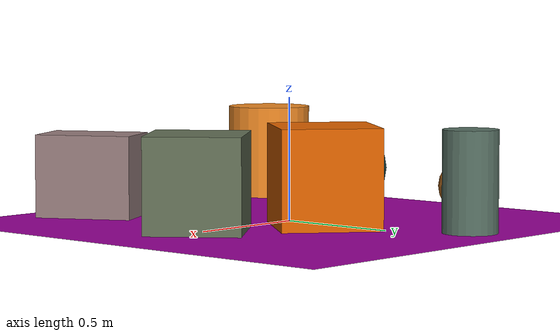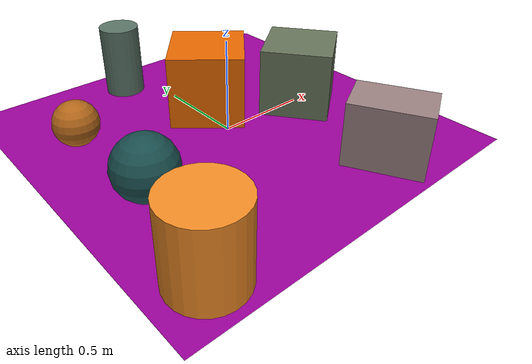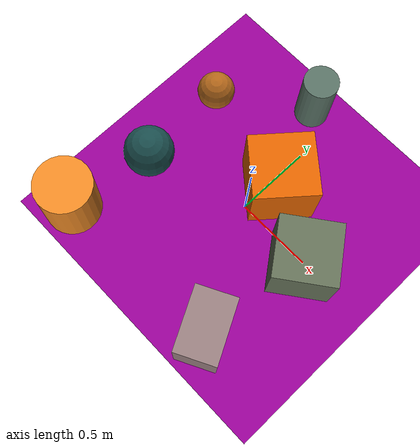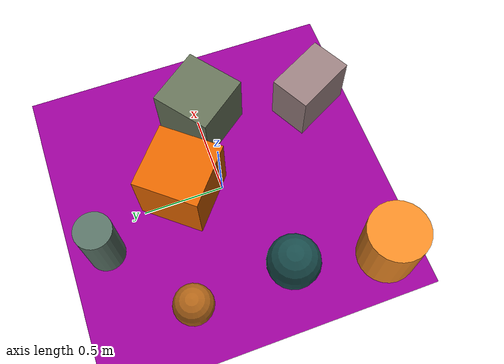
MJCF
<mujoco>
   <asset>
<texture type="skybox" builtin="gradient" rgb1="0.7 0.9 0.3" rgb2="0.1 0.1 0.5" width="256" height="256"/>
<texture name="gradient_0" builtin="gradient" rgb1="1.0 0.4 0.2" rgb2="0.9 0.7 0.1" width="200" height="200"/>
<texture name="flat_1" builtin="flat" rgb1="0.1 0.3 0.3" rgb2="0.1 0.3 0.3"  width="200" height="200"/>
<texture name="gradient_2" builtin="gradient" rgb1="0.4 1.0 0.4" rgb2="0.8 0.0 0.6" width="200" height="200"/>
<texture name="gradient_3" builtin="gradient" rgb1="0.5 0.5 0.4" rgb2="0.3 0.4 0.3" width="200" height="200"/>
<texture name="flat_4" builtin="flat" rgb1="0.9 0.4 0.0" rgb2="0.9 0.4 0.0"  width="200" height="200"/>
<texture name="flat_5" builtin="flat" rgb1="0.7 0.4 0.1" rgb2="0.7 0.4 0.1"  width="200" height="200"/>
<texture name="checker_6" builtin="checker" rgb1="0.7 0.7 0.7" rgb2="0.0 0.2 0.1" width="200" height="200"/><material name="gradient_0_mat" reflectance="0" texture="gradient_0" texuniform="true"/>
<material name="flat_1_mat" reflectance="0" texture="flat_1" texuniform="true"/>
<material name="gradient_2_mat" reflectance="0" texture="gradient_2" texuniform="true"/>
<material name="gradient_3_mat" reflectance="0" texture="gradient_3" texuniform="true"/>
<material name="flat_4_mat" reflectance="0" texture="flat_4" texuniform="true"/>
<material name="flat_5_mat" reflectance="0" texture="flat_5" texuniform="true"/>
<material name="checker_6_mat" reflectance="0" texrepeat="10 10" texture="checker_6" texuniform="false" />
   </asset>

   <worldbody>
      <light diffuse=".9 .9 .9" pos="0 0 3" dir="0 0 -1"/>
     <geom type="plane" size="1 1 0.1" rgba="0.6 0.0 0.6 1"/>
<geom type="cylinder" pos="-0.74 -0.78 0.2" size="0.18 0.2 0.2" material="gradient_0_mat" euler="0 0 42" />
<geom type="sphere" pos="-0.64 -0.22 0.16" size="0.16 0.16 0.16" material="flat_1_mat" euler="0 0 65" />
<geom type="box" pos="0.4 -0.73 0.17" size="0.13 0.2 0.17" material="gradient_2_mat" euler="0 0 28" />
<geom type="box" pos="0.5 -0.03 0.19" size="0.19 0.19 0.19" material="gradient_3_mat" euler="0 0 37" />
<geom type="box" pos="0.05 0.23 0.2" size="0.2 0.2 0.2" material="flat_4_mat" euler="0 0 50" />
<geom type="sphere" pos="-0.67 0.39 0.12" size="0.12 0.12 0.12" material="flat_5_mat" euler="0 0 57" />
<geom type="cylinder" pos="-0.17 0.78 0.2" size="0.11 0.2 0.2" material="checker_6_mat" euler="0 0 89" /><camera euler="60 0 180" fovy="60" name="camera1" pos="-0.2 -1.5 1"></camera>   </worldbody>
</mujoco>
